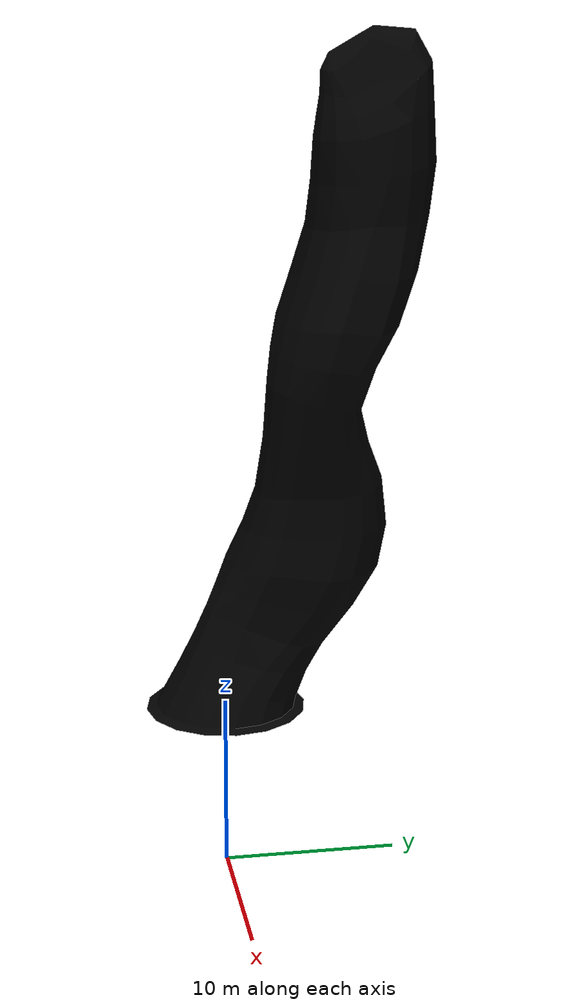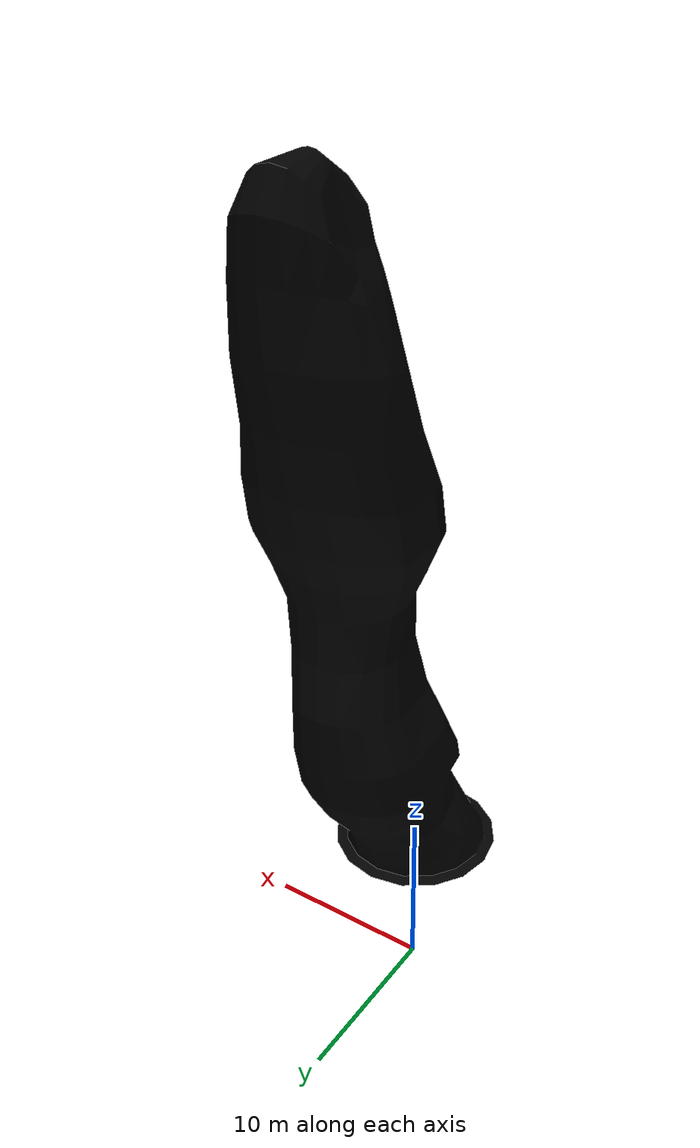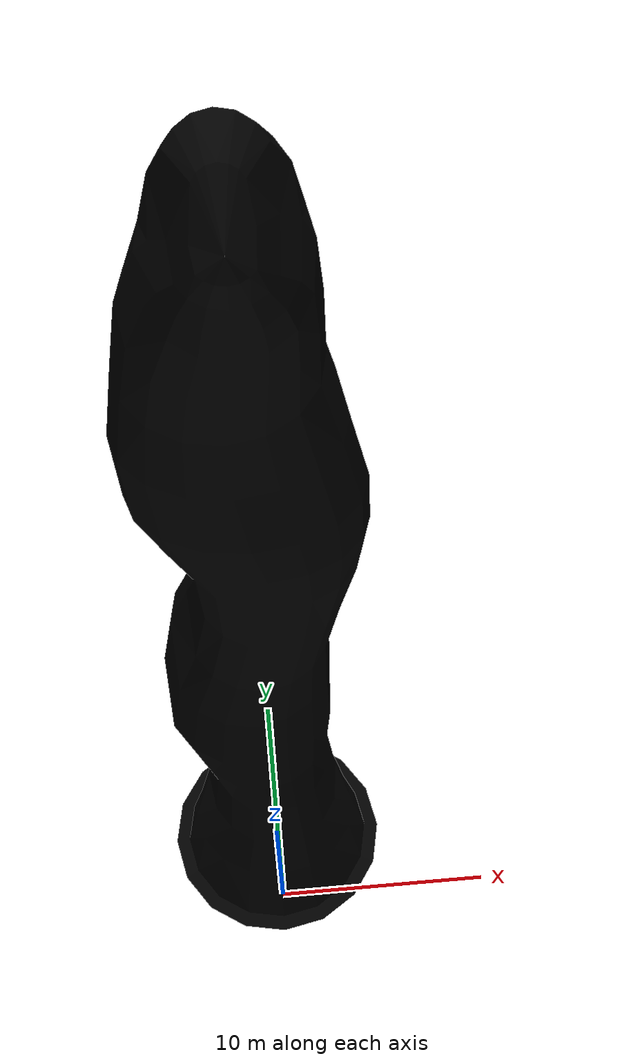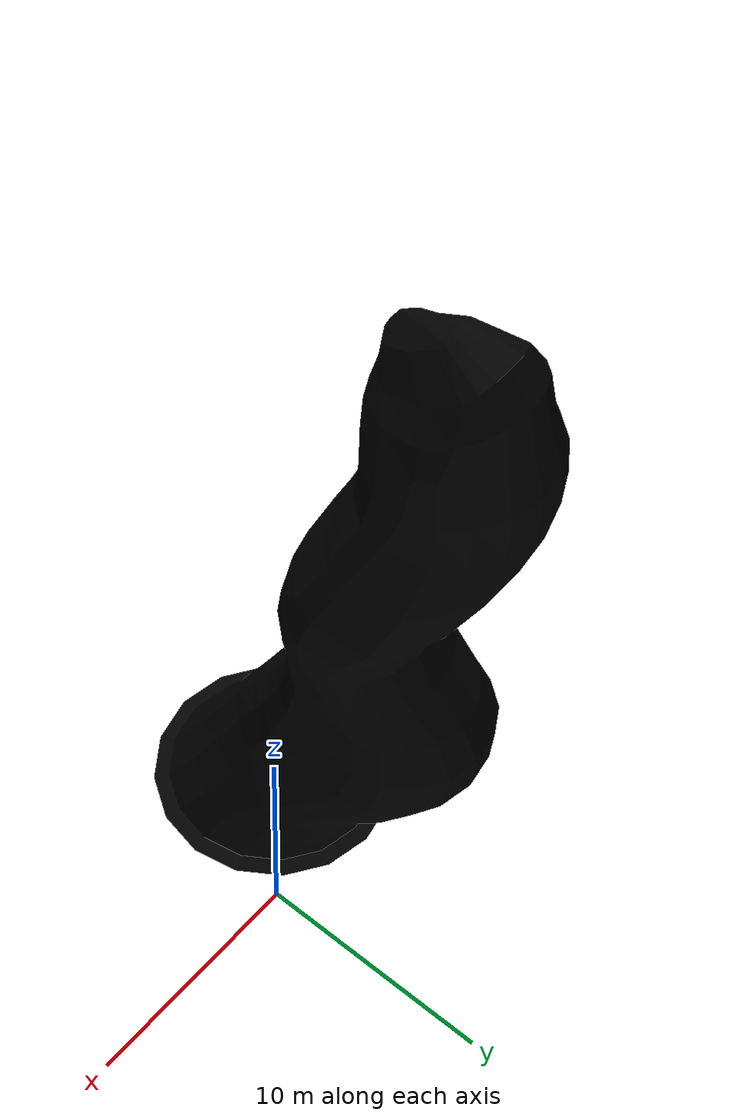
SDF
<sdf version="1.6">
  <model name="Cave Vertical Shaft Dead End Type A">
    <static>true</static>
    <link name="base_link">
      <collision name="collision">
        <pose>0 0 0 0 0 0</pose>
        <geometry>
          <mesh>
            <uri>model://Cave Vertical Shaft Dead End Type A/meshes/verticalshaftdeadend.dae</uri>
            <scale>1.0 1.0 1.0</scale>
          </mesh>
        </geometry>
      </collision>
      <visual name="Cave Vertical Shaft Dead End Type A_visual">
        <geometry>
          <mesh>
            <uri>model://Cave Vertical Shaft Dead End Type A/meshes/verticalshaftdeadend.dae</uri>
          </mesh>
        </geometry>
        <material>
          <diffuse>0 0 0 1</diffuse>
          <specular>0 0 0 1</specular>
          <pbr>
            <metal>
              <albedo_map>model://Cave Vertical Shaft Dead End Type A/materials/textures/CaveWall_Albedo.png</albedo_map>
              <normal_map>model://Cave Vertical Shaft Dead End Type A/materials/textures/CaveWall_Normal.png</normal_map>
              <roughness_map>model://Cave Vertical Shaft Dead End Type A/materials/textures/CaveWall_Roughness.png</roughness_map>
            </metal>
          </pbr>

          <script>
            <uri>model://Cave Vertical Shaft Dead End Type A/materials/scripts/</uri>
            <uri>model://Cave Vertical Shaft Dead End Type A/materials/textures/</uri>
            <name>CaveTile/CaveWall_Diffuse</name>
          </script>
        </material>
      </visual>
    </link>

    <plugin filename="libignition-gazebo-performer-detector-system.so" name="ignition::gazebo::systems::PerformerDetector">
      <header_data>
        <key>type</key>
        <value>vertical</value>
      </header_data>
      <topic>/subt_performer_detector</topic>
      <pose>0 8 45 0 0 0</pose>
      <geometry>
        <box>
          <size>10 10 10</size>
        </box>
      </geometry>
    </plugin>
  </model>
</sdf>
